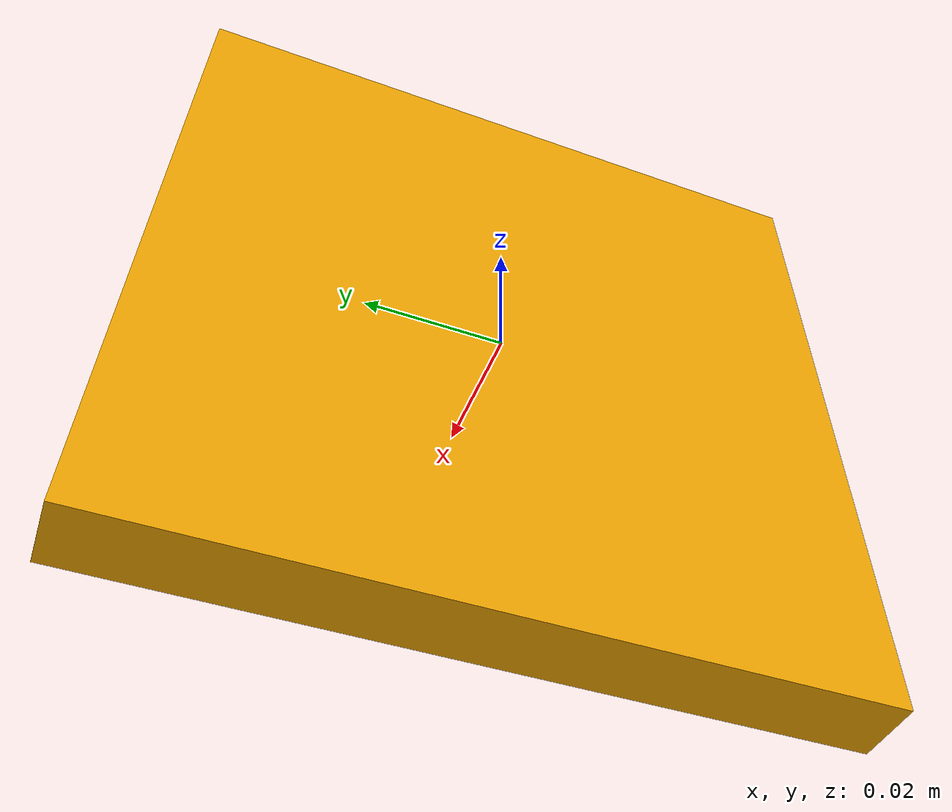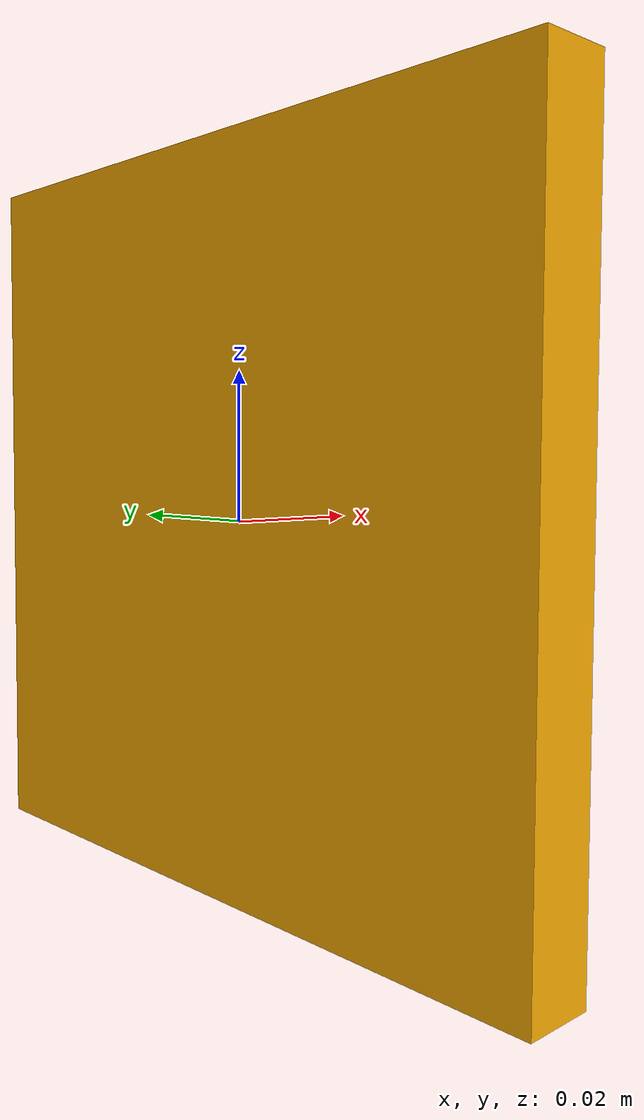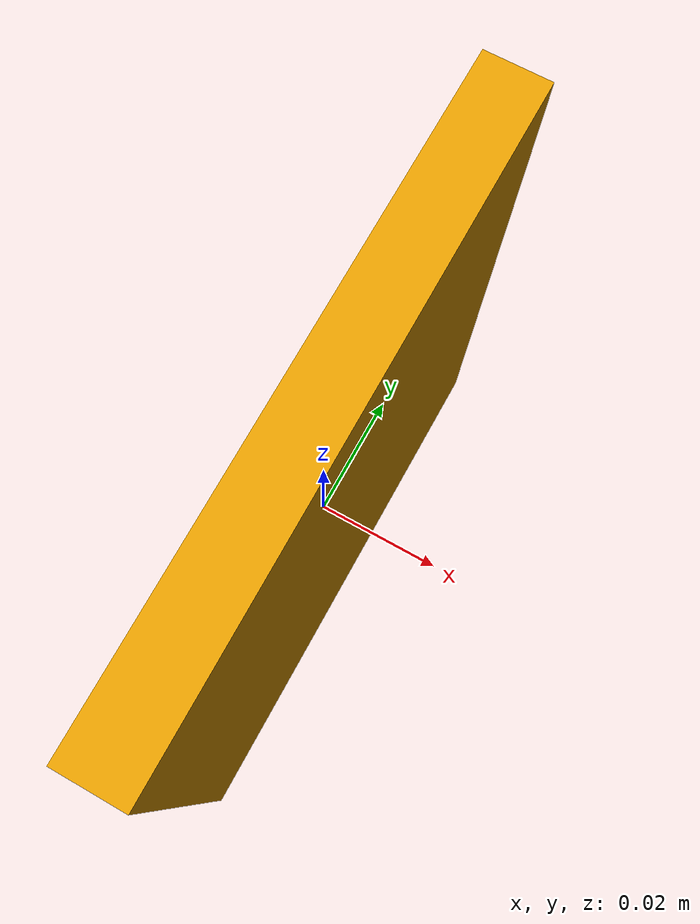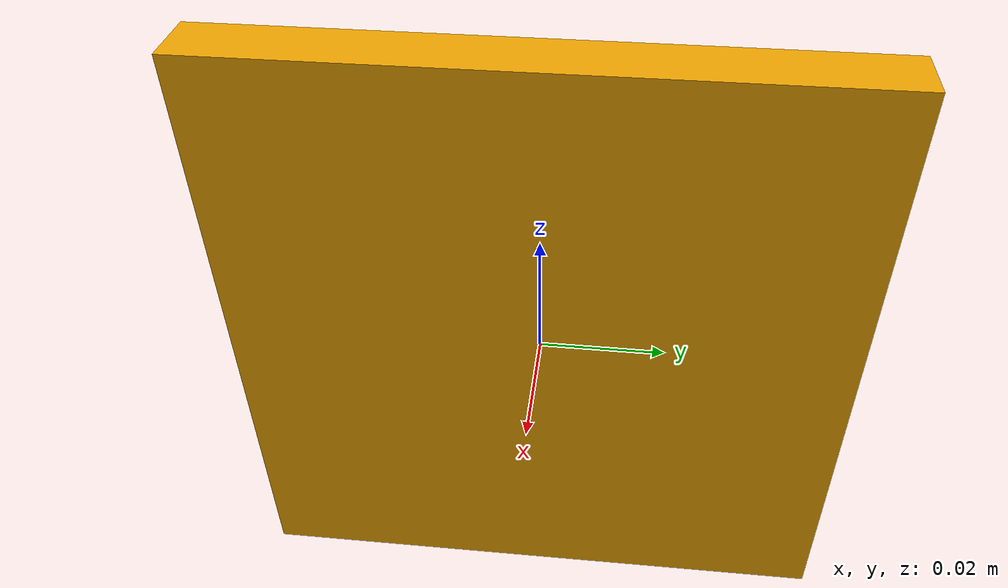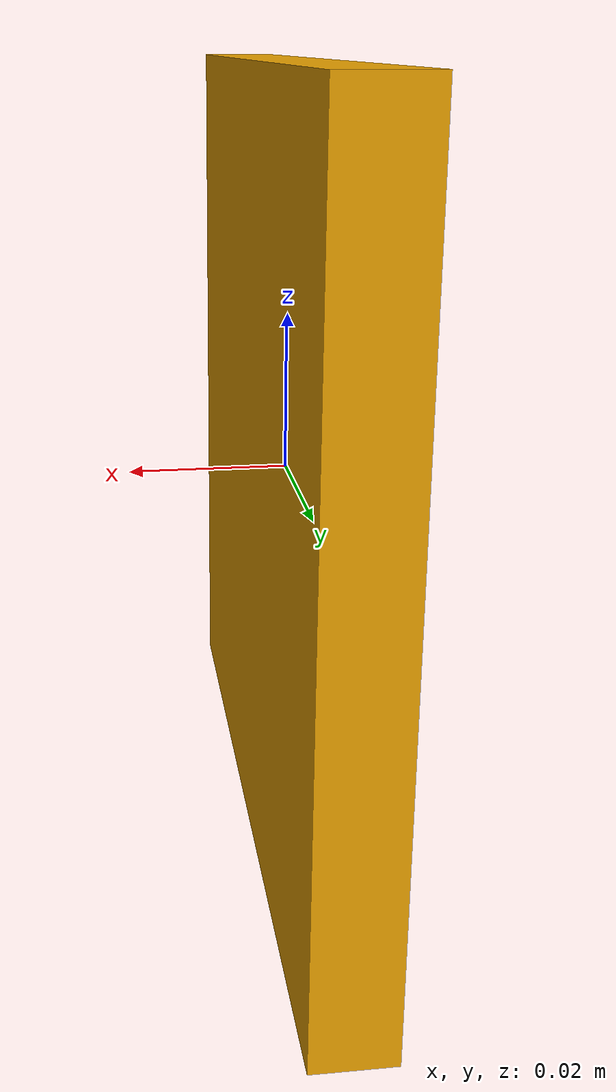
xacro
<?xml version="1.0"?>
<robot name="apriltag" xmlns:xacro="http://ros.org/wiki/xacro">
    <xacro:arg name="tag_id" default="0"/>
    <xacro:arg name="tag_size" default="0.1"/>

    <link name="base_link">
        <gravity>0</gravity>

        <inertial>
            <origin
                xyz="0 0 0"
                rpy="0 0 0" />
            <mass
                value="1e-3" />
            <inertia
                ixx="1e-3"
                ixy="1e-3"
                ixz="1e-3"
                iyy="1e-3"
                iyz="1e-3"
                izz="1e-3" />
        </inertial>
        <visual>
            <origin
                xyz="0 0 0"
                rpy="0 0 0" />
            <geometry>
                <box size="0.01 $(arg tag_size) $(arg tag_size)"/>
            </geometry>
        </visual>
        <collision>
            <origin
                xyz="0 0 0"
                rpy="0 0 0" />
            <geometry>
                <box size="0.01 $(arg tag_size) $(arg tag_size)"/>
            </geometry>
        </collision>
    </link>
    <gazebo reference="base_link">
        <turnGravityOff>true</turnGravityOff>
        <material>a_$(arg tag_id)/Image</material>
    </gazebo>

</robot>
